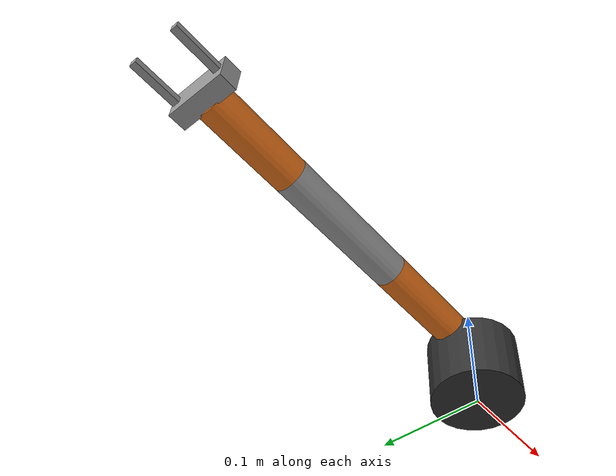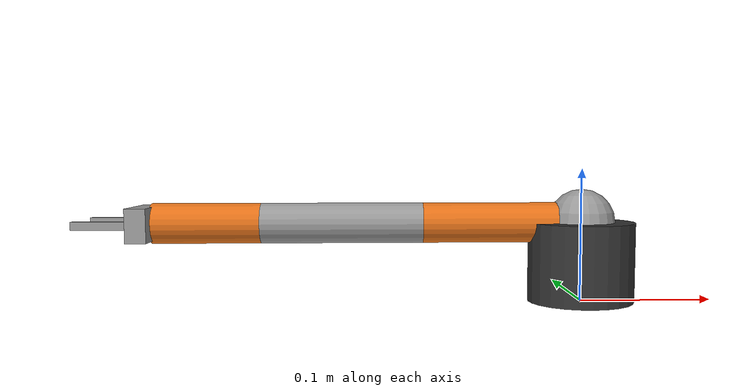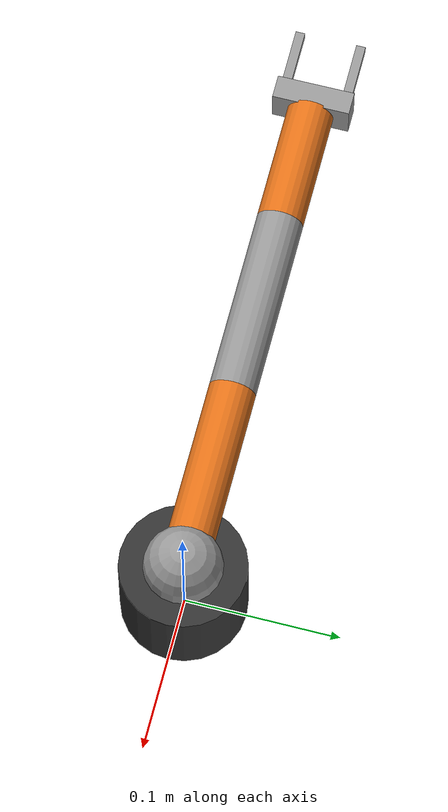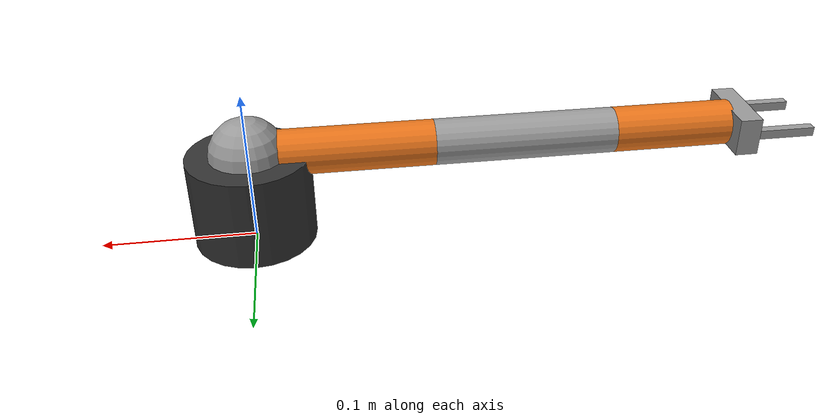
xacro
<?xml version="1.0"?>
<robot name="modular_arm" xmlns:xacro="http://www.ros.org/wiki/xacro">

  <xacro:property name="L0" value="0.06"/>   <!-- base stand height (ground -> shoulder) -->
  <xacro:property name="L1" value="0.12"/>   <!-- shoulder -> elbow (upper arm) -->
  <xacro:property name="L2" value="0.12"/>   <!-- elbow -> wrist (forearm) -->
  <xacro:property name="L3" value="0.08"/>   <!-- wrist -> end effector tip -->
  <xacro:property name="link_radius" value="0.015"/>

  <xacro:property name="joint_effort" value="5.0"/>
  <xacro:property name="joint_velocity" value="2.0"/>

  <material name="grey"><color rgba="0.6 0.6 0.6 1.0"/></material>
  <material name="orange"><color rgba="0.9 0.45 0.1 1.0"/></material>
  <material name="dark"><color rgba="0.2 0.2 0.2 1.0"/></material>

  <xacro:macro name="simple_inertial" params="mass length include_com:=true">
    <inertial>
      <xacro:if value="${include_com}">
        <origin xyz="0 0 ${length/2}" rpy="0 0 0"/>
      </xacro:if>
      <mass value="${mass}"/>
      <inertia ixx="0.001" ixy="0.0" ixz="0.0" iyy="0.001" iyz="0.0" izz="0.001"/>
    </inertial>
  </xacro:macro>

  <!-- Reusable macro for an arm segment: a cylinder along its local +Z or +X,
       here modeled along the joint's rotation axis offset for visualization. -->
  <xacro:macro name="segment_link" params="name length material_name">
    <link name="${name}">
      <visual>
        <origin xyz="0 0 ${length/2}" rpy="0 0 0"/>
        <geometry><cylinder radius="${link_radius}" length="${length}"/></geometry>
        <material name="${material_name}"/>
      </visual>
      <collision>
        <origin xyz="0 0 ${length/2}" rpy="0 0 0"/>
        <geometry><cylinder radius="${link_radius}" length="${length}"/></geometry>
      </collision>
      <xacro:simple_inertial mass="0.15" length="${length}"/>
    </link>
  </xacro:macro>

  <!-- =========================================================
       world -> base_link (fixed). Keeps the robot pinned for Gazebo.
       ========================================================= -->
  <link name="world"/>

  <link name="base_link">
    <visual>
      <origin xyz="0 0 ${L0/2}" rpy="0 0 0"/>
      <geometry><cylinder radius="0.04" length="${L0}"/></geometry>
      <material name="dark"/>
    </visual>
    <collision>
      <origin xyz="0 0 ${L0/2}" rpy="0 0 0"/>
      <geometry><cylinder radius="0.04" length="${L0}"/></geometry>
    </collision>
    <xacro:simple_inertial mass="0.4" length="${L0}"/>
  </link>

  <joint name="world_to_base" type="fixed">
    <parent link="world"/>
    <child link="base_link"/>
    <origin xyz="0 0 0" rpy="0 0 0"/>
  </joint>

  <!-- =========================================================
       joint1: base yaw (rotates the whole arm plane about Z)
       ========================================================= -->
  <link name="link1">
    <visual>
      <geometry><sphere radius="0.025"/></geometry>
      <material name="grey"/>
    </visual>
    <collision>
      <geometry><sphere radius="0.025"/></geometry>
    </collision>
    <xacro:simple_inertial mass="0.1" length="0.0" include_com="false"/>
  </link>

  <joint name="joint1" type="revolute">
    <parent link="base_link"/>
    <child link="link1"/>
    <origin xyz="0 0 ${L0}" rpy="0 0 0"/>
    <axis xyz="0 0 1"/>
    <limit lower="-3.14159" upper="3.14159" effort="${joint_effort}" velocity="${joint_velocity}"/>
  </joint>

  <!-- =========================================================
       joint2: shoulder pitch -> link2 (upper arm, length L1)
       ========================================================= -->
  <xacro:segment_link name="link2" length="${L1}" material_name="orange"/>

  <joint name="joint2" type="revolute">
    <parent link="link1"/>
    <child link="link2"/>
    <origin xyz="0 0 0" rpy="0 -1.5708 0"/>
    <axis xyz="0 1 0"/>
    <limit lower="-1.5708" upper="3.14159" effort="${joint_effort}" velocity="${joint_velocity}"/>
  </joint>

  <!-- =========================================================
       joint3: elbow pitch -> link3 (forearm, length L2)
       ========================================================= -->
  <xacro:segment_link name="link3" length="${L2}" material_name="grey"/>

  <joint name="joint3" type="revolute">
    <parent link="link2"/>
    <child link="link3"/>
    <origin xyz="0 0 ${L1}" rpy="0 0 0"/>
    <axis xyz="0 1 0"/>
    <limit lower="-3.14159" upper="3.14159" effort="${joint_effort}" velocity="${joint_velocity}"/>
  </joint>

  <!-- =========================================================
       joint4: wrist pitch -> link4 (wrist link, length L3)
       ========================================================= -->
  <xacro:segment_link name="link4" length="${L3}" material_name="orange"/>

  <joint name="joint4" type="revolute">
    <parent link="link3"/>
    <child link="link4"/>
    <origin xyz="0 0 ${L2}" rpy="0 0 0"/>
    <axis xyz="0 1 0"/>
    <limit lower="-3.14159" upper="3.14159" effort="${joint_effort}" velocity="${joint_velocity}"/>
  </joint>
  <!-- =========================================================
       end effector link (fixed to the wrist)
       ========================================================= -->
  <link name="end_effector_link"/>

  <joint name="end_effector_joint" type="fixed">
    <parent link="link4"/>
    <child link="end_effector_link"/>
    <origin xyz="0 0 ${L3}" rpy="0 0 0"/>
  </joint>

  <!-- =========================================================
       parallel-jaw gripper on the end effector
       ========================================================= -->
  <xacro:property name="gripper_spread" value="0.04"/>
  <xacro:property name="finger_length" value="0.04"/>
  <xacro:property name="finger_width" value="0.006"/>

  <link name="gripper_base">
    <visual>
      <geometry><box size="0.025 0.05 0.015"/></geometry>
      <material name="grey"/>
    </visual>
    <collision>
      <geometry><box size="0.025 0.05 0.015"/></geometry>
    </collision>
    <xacro:simple_inertial mass="0.03" length="0.015" include_com="true"/>
  </link>
  <joint name="gripper_base_joint" type="fixed">
    <parent link="end_effector_link"/>
    <child link="gripper_base"/>
    <origin xyz="0 0 0.006" rpy="0 0 0"/>
  </joint>

  <link name="finger_left">
    <visual>
      <origin xyz="0 0 ${finger_length/2}" rpy="0 0 0"/>
      <geometry><box size="${finger_width} ${finger_width} ${finger_length}"/></geometry>
      <material name="grey"/>
    </visual>
    <collision>
      <origin xyz="0 0 ${finger_length/2}" rpy="0 0 0"/>
      <geometry><box size="${finger_width} ${finger_width} ${finger_length}"/></geometry>
    </collision>
    <xacro:simple_inertial mass="0.005" length="0.0" include_com="false"/>
  </link>
  <joint name="finger_left_joint" type="prismatic">
    <parent link="gripper_base"/>
    <child link="finger_left"/>
    <origin xyz="0 ${gripper_spread/2} 0.006" rpy="0 0 0"/>
    <axis xyz="0 -1 0"/>
    <limit lower="0" upper="${(gripper_spread - finger_width) / 2 - 0.001}" effort="1.0" velocity="0.1"/>
  </joint>

  <link name="finger_right">
    <visual>
      <origin xyz="0 0 ${finger_length/2}" rpy="0 0 0"/>
      <geometry><box size="${finger_width} ${finger_width} ${finger_length}"/></geometry>
      <material name="grey"/>
    </visual>
    <collision>
      <origin xyz="0 0 ${finger_length/2}" rpy="0 0 0"/>
      <geometry><box size="${finger_width} ${finger_width} ${finger_length}"/></geometry>
    </collision>
    <xacro:simple_inertial mass="0.005" length="0.0" include_com="false"/>
  </link>
  <joint name="finger_right_joint" type="prismatic">
    <parent link="gripper_base"/>
    <child link="finger_right"/>
    <origin xyz="0 ${-gripper_spread/2} 0.006" rpy="0 0 0"/>
    <axis xyz="0 1 0"/>
    <limit lower="0" upper="${(gripper_spread - finger_width) / 2 - 0.001}" effort="1.0" velocity="0.1"/>
  </joint>

  <xacro:include filename="$(find modular_arm_description)/urdf/modular_arm.gazebo.xacro"/>

  <gazebo reference="gripper_base">
    <sensor name="wrist_camera" type="camera">
      <pose>-0.06 0.0 -0.015 0 -0.5 0</pose>
      <always_on>true</always_on>
      <visualize>true</visualize>
      <update_rate>30</update_rate>
      <camera>
        <horizontal_fov>1.0472</horizontal_fov>
        <image>
          <width>640</width>
          <height>480</height>
          <format>R8G8B8</format>
        </image>
        <clip>
          <near>0.005</near>
          <far>0.5</far>
        </clip>
      </camera>
    </sensor>
  </gazebo>

</robot>
